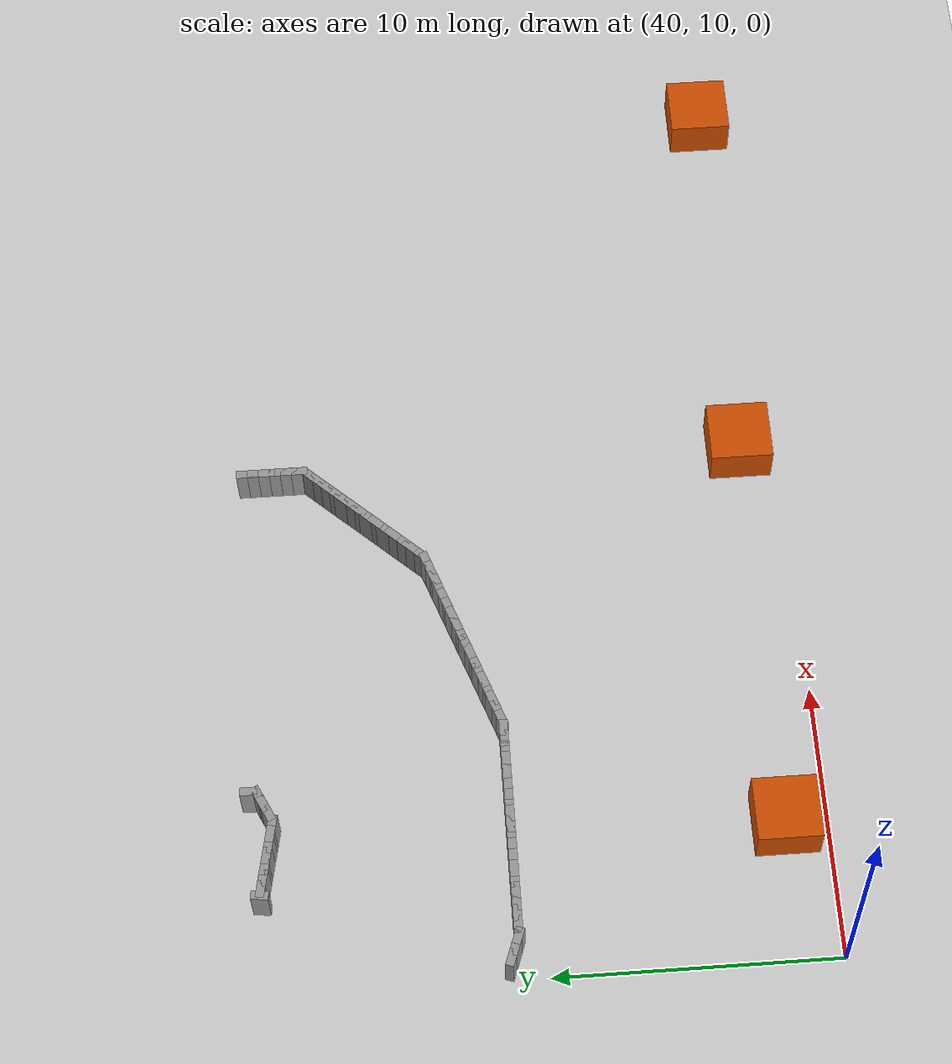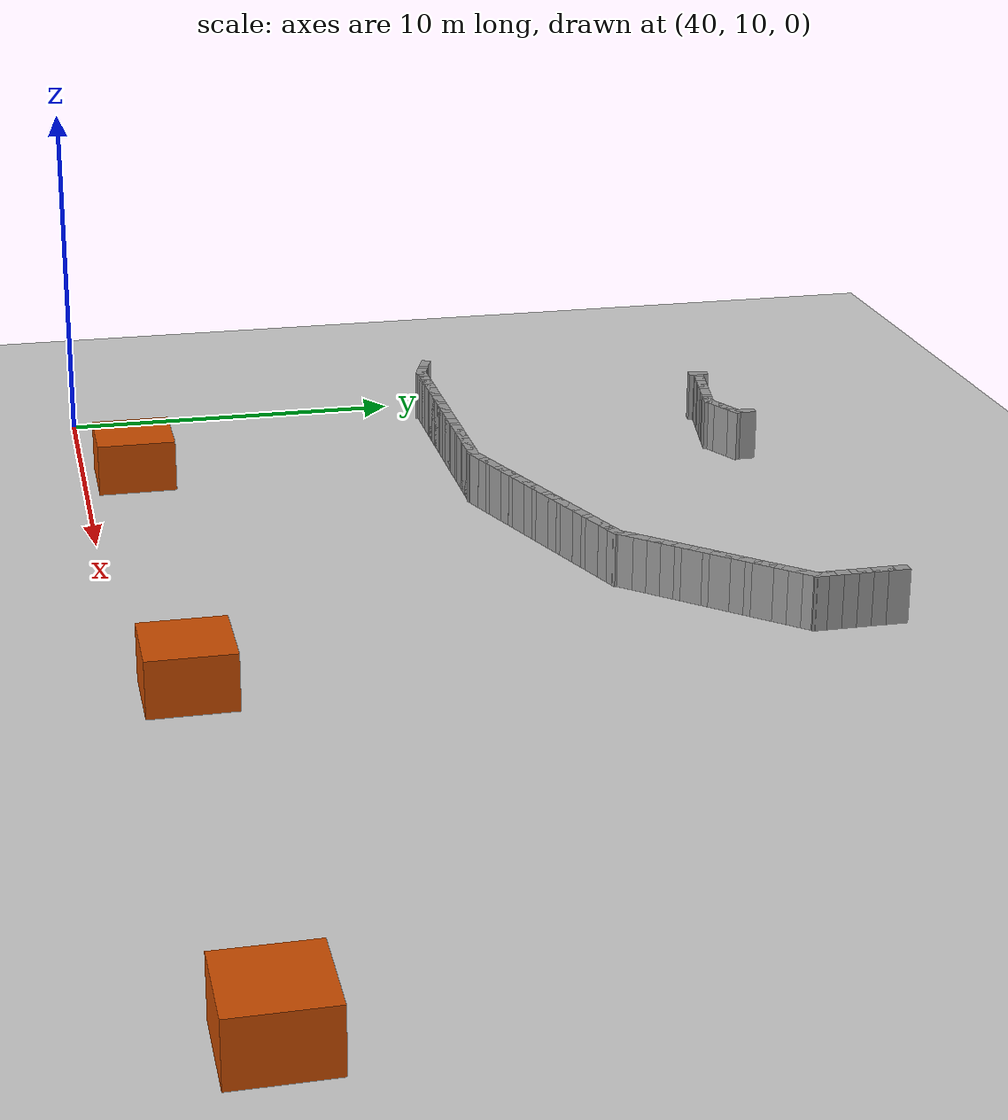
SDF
<sdf version="1.5">
 <world name="img_rect_obs">
  <include><uri>model://sun</uri></include>
  <include><uri>model://ground_plane</uri></include>
  <model name="wallL_42">
   <static>true</static>
   <pose>40.312 21.274 0.750 0 0 -0.343</pose>
   <link name="link">
    <collision name="col"><geometry><box><size>0.600 0.300 1.500</size></box></geometry></collision>
    <visual name="vis">
     <geometry><box><size>0.600 0.300 1.500</size></box></geometry>
     <material><ambient>0.6 0.6 0.6 1</ambient><diffuse>0.6 0.6 0.6 1</diffuse></material>
    </visual>
   </link>
  </model>
  <model name="wallL_43">
   <static>true</static>
   <pose>40.689 21.139 0.750 0 0 -0.343</pose>
   <link name="link">
    <collision name="col"><geometry><box><size>0.600 0.300 1.500</size></box></geometry></collision>
    <visual name="vis">
     <geometry><box><size>0.600 0.300 1.500</size></box></geometry>
     <material><ambient>0.6 0.6 0.6 1</ambient><diffuse>0.6 0.6 0.6 1</diffuse></material>
    </visual>
   </link>
  </model>
  <model name="wallL_44">
   <static>true</static>
   <pose>41.065 21.005 0.750 0 0 -0.343</pose>
   <link name="link">
    <collision name="col"><geometry><box><size>0.600 0.300 1.500</size></box></geometry></collision>
    <visual name="vis">
     <geometry><box><size>0.600 0.300 1.500</size></box></geometry>
     <material><ambient>0.6 0.6 0.6 1</ambient><diffuse>0.6 0.6 0.6 1</diffuse></material>
    </visual>
   </link>
  </model>
  <model name="wallL_45">
   <static>true</static>
   <pose>41.462 20.985 0.750 0 0 0.000</pose>
   <link name="link">
    <collision name="col"><geometry><box><size>0.600 0.300 1.500</size></box></geometry></collision>
    <visual name="vis">
     <geometry><box><size>0.600 0.300 1.500</size></box></geometry>
     <material><ambient>0.6 0.6 0.6 1</ambient><diffuse>0.6 0.6 0.6 1</diffuse></material>
    </visual>
   </link>
  </model>
  <model name="wallL_46">
   <static>true</static>
   <pose>41.862 20.985 0.750 0 0 0.000</pose>
   <link name="link">
    <collision name="col"><geometry><box><size>0.600 0.300 1.500</size></box></geometry></collision>
    <visual name="vis">
     <geometry><box><size>0.600 0.300 1.500</size></box></geometry>
     <material><ambient>0.6 0.6 0.6 1</ambient><diffuse>0.6 0.6 0.6 1</diffuse></material>
    </visual>
   </link>
  </model>
  <model name="wallL_47">
   <static>true</static>
   <pose>42.262 20.985 0.750 0 0 0.000</pose>
   <link name="link">
    <collision name="col"><geometry><box><size>0.600 0.300 1.500</size></box></geometry></collision>
    <visual name="vis">
     <geometry><box><size>0.600 0.300 1.500</size></box></geometry>
     <material><ambient>0.6 0.6 0.6 1</ambient><diffuse>0.6 0.6 0.6 1</diffuse></material>
    </visual>
   </link>
  </model>
  <model name="wallL_48">
   <static>true</static>
   <pose>42.662 20.985 0.750 0 0 0.000</pose>
   <link name="link">
    <collision name="col"><geometry><box><size>0.600 0.300 1.500</size></box></geometry></collision>
    <visual name="vis">
     <geometry><box><size>0.600 0.300 1.500</size></box></geometry>
     <material><ambient>0.6 0.6 0.6 1</ambient><diffuse>0.6 0.6 0.6 1</diffuse></material>
    </visual>
   </link>
  </model>
  <model name="wallL_49">
   <static>true</static>
   <pose>43.062 20.985 0.750 0 0 0.000</pose>
   <link name="link">
    <collision name="col"><geometry><box><size>0.600 0.300 1.500</size></box></geometry></collision>
    <visual name="vis">
     <geometry><box><size>0.600 0.300 1.500</size></box></geometry>
     <material><ambient>0.6 0.6 0.6 1</ambient><diffuse>0.6 0.6 0.6 1</diffuse></material>
    </visual>
   </link>
  </model>
  <model name="wallL_50">
   <static>true</static>
   <pose>43.462 20.985 0.750 0 0 0.000</pose>
   <link name="link">
    <collision name="col"><geometry><box><size>0.600 0.300 1.500</size></box></geometry></collision>
    <visual name="vis">
     <geometry><box><size>0.600 0.300 1.500</size></box></geometry>
     <material><ambient>0.6 0.6 0.6 1</ambient><diffuse>0.6 0.6 0.6 1</diffuse></material>
    </visual>
   </link>
  </model>
  <model name="wallL_51">
   <static>true</static>
   <pose>43.862 20.985 0.750 0 0 0.000</pose>
   <link name="link">
    <collision name="col"><geometry><box><size>0.600 0.300 1.500</size></box></geometry></collision>
    <visual name="vis">
     <geometry><box><size>0.600 0.300 1.500</size></box></geometry>
     <material><ambient>0.6 0.6 0.6 1</ambient><diffuse>0.6 0.6 0.6 1</diffuse></material>
    </visual>
   </link>
  </model>
  <model name="wallL_52">
   <static>true</static>
   <pose>44.262 20.985 0.750 0 0 0.000</pose>
   <link name="link">
    <collision name="col"><geometry><box><size>0.600 0.300 1.500</size></box></geometry></collision>
    <visual name="vis">
     <geometry><box><size>0.600 0.300 1.500</size></box></geometry>
     <material><ambient>0.6 0.6 0.6 1</ambient><diffuse>0.6 0.6 0.6 1</diffuse></material>
    </visual>
   </link>
  </model>
  <model name="wallL_53">
   <static>true</static>
   <pose>44.662 20.985 0.750 0 0 0.000</pose>
   <link name="link">
    <collision name="col"><geometry><box><size>0.600 0.300 1.500</size></box></geometry></collision>
    <visual name="vis">
     <geometry><box><size>0.600 0.300 1.500</size></box></geometry>
     <material><ambient>0.6 0.6 0.6 1</ambient><diffuse>0.6 0.6 0.6 1</diffuse></material>
    </visual>
   </link>
  </model>
  <model name="wallL_54">
   <static>true</static>
   <pose>45.062 20.985 0.750 0 0 0.000</pose>
   <link name="link">
    <collision name="col"><geometry><box><size>0.600 0.300 1.500</size></box></geometry></collision>
    <visual name="vis">
     <geometry><box><size>0.600 0.300 1.500</size></box></geometry>
     <material><ambient>0.6 0.6 0.6 1</ambient><diffuse>0.6 0.6 0.6 1</diffuse></material>
    </visual>
   </link>
  </model>
  <model name="wallL_55">
   <static>true</static>
   <pose>45.462 20.985 0.750 0 0 0.000</pose>
   <link name="link">
    <collision name="col"><geometry><box><size>0.600 0.300 1.500</size></box></geometry></collision>
    <visual name="vis">
     <geometry><box><size>0.600 0.300 1.500</size></box></geometry>
     <material><ambient>0.6 0.6 0.6 1</ambient><diffuse>0.6 0.6 0.6 1</diffuse></material>
    </visual>
   </link>
  </model>
  <model name="wallL_56">
   <static>true</static>
   <pose>45.862 20.985 0.750 0 0 0.000</pose>
   <link name="link">
    <collision name="col"><geometry><box><size>0.600 0.300 1.500</size></box></geometry></collision>
    <visual name="vis">
     <geometry><box><size>0.600 0.300 1.500</size></box></geometry>
     <material><ambient>0.6 0.6 0.6 1</ambient><diffuse>0.6 0.6 0.6 1</diffuse></material>
    </visual>
   </link>
  </model>
  <model name="wallL_57">
   <static>true</static>
   <pose>46.262 20.985 0.750 0 0 0.000</pose>
   <link name="link">
    <collision name="col"><geometry><box><size>0.600 0.300 1.500</size></box></geometry></collision>
    <visual name="vis">
     <geometry><box><size>0.600 0.300 1.500</size></box></geometry>
     <material><ambient>0.6 0.6 0.6 1</ambient><diffuse>0.6 0.6 0.6 1</diffuse></material>
    </visual>
   </link>
  </model>
  <model name="wallL_58">
   <static>true</static>
   <pose>46.662 20.985 0.750 0 0 0.000</pose>
   <link name="link">
    <collision name="col"><geometry><box><size>0.600 0.300 1.500</size></box></geometry></collision>
    <visual name="vis">
     <geometry><box><size>0.600 0.300 1.500</size></box></geometry>
     <material><ambient>0.6 0.6 0.6 1</ambient><diffuse>0.6 0.6 0.6 1</diffuse></material>
    </visual>
   </link>
  </model>
  <model name="wallL_59">
   <static>true</static>
   <pose>47.062 20.985 0.750 0 0 0.000</pose>
   <link name="link">
    <collision name="col"><geometry><box><size>0.600 0.300 1.500</size></box></geometry></collision>
    <visual name="vis">
     <geometry><box><size>0.600 0.300 1.500</size></box></geometry>
     <material><ambient>0.6 0.6 0.6 1</ambient><diffuse>0.6 0.6 0.6 1</diffuse></material>
    </visual>
   </link>
  </model>
  <model name="wallL_60">
   <static>true</static>
   <pose>47.462 20.985 0.750 0 0 0.000</pose>
   <link name="link">
    <collision name="col"><geometry><box><size>0.600 0.300 1.500</size></box></geometry></collision>
    <visual name="vis">
     <geometry><box><size>0.600 0.300 1.500</size></box></geometry>
     <material><ambient>0.6 0.6 0.6 1</ambient><diffuse>0.6 0.6 0.6 1</diffuse></material>
    </visual>
   </link>
  </model>
  <model name="wallL_61">
   <static>true</static>
   <pose>47.862 20.985 0.750 0 0 0.000</pose>
   <link name="link">
    <collision name="col"><geometry><box><size>0.600 0.300 1.500</size></box></geometry></collision>
    <visual name="vis">
     <geometry><box><size>0.600 0.300 1.500</size></box></geometry>
     <material><ambient>0.6 0.6 0.6 1</ambient><diffuse>0.6 0.6 0.6 1</diffuse></material>
    </visual>
   </link>
  </model>
  <model name="wallL_62">
   <static>true</static>
   <pose>48.262 20.985 0.750 0 0 0.000</pose>
   <link name="link">
    <collision name="col"><geometry><box><size>0.600 0.300 1.500</size></box></geometry></collision>
    <visual name="vis">
     <geometry><box><size>0.600 0.300 1.500</size></box></geometry>
     <material><ambient>0.6 0.6 0.6 1</ambient><diffuse>0.6 0.6 0.6 1</diffuse></material>
    </visual>
   </link>
  </model>
  <model name="wallL_63">
   <static>true</static>
   <pose>48.662 20.985 0.750 0 0 0.000</pose>
   <link name="link">
    <collision name="col"><geometry><box><size>0.600 0.300 1.500</size></box></geometry></collision>
    <visual name="vis">
     <geometry><box><size>0.600 0.300 1.500</size></box></geometry>
     <material><ambient>0.6 0.6 0.6 1</ambient><diffuse>0.6 0.6 0.6 1</diffuse></material>
    </visual>
   </link>
  </model>
  <model name="wallL_64">
   <static>true</static>
   <pose>49.051 21.046 0.750 0 0 0.343</pose>
   <link name="link">
    <collision name="col"><geometry><box><size>0.600 0.300 1.500</size></box></geometry></collision>
    <visual name="vis">
     <geometry><box><size>0.600 0.300 1.500</size></box></geometry>
     <material><ambient>0.6 0.6 0.6 1</ambient><diffuse>0.6 0.6 0.6 1</diffuse></material>
    </visual>
   </link>
  </model>
  <model name="wallL_65">
   <static>true</static>
   <pose>49.428 21.181 0.750 0 0 0.343</pose>
   <link name="link">
    <collision name="col"><geometry><box><size>0.600 0.300 1.500</size></box></geometry></collision>
    <visual name="vis">
     <geometry><box><size>0.600 0.300 1.500</size></box></geometry>
     <material><ambient>0.6 0.6 0.6 1</ambient><diffuse>0.6 0.6 0.6 1</diffuse></material>
    </visual>
   </link>
  </model>
  <model name="wallL_66">
   <static>true</static>
   <pose>49.804 21.316 0.750 0 0 0.343</pose>
   <link name="link">
    <collision name="col"><geometry><box><size>0.600 0.300 1.500</size></box></geometry></collision>
    <visual name="vis">
     <geometry><box><size>0.600 0.300 1.500</size></box></geometry>
     <material><ambient>0.6 0.6 0.6 1</ambient><diffuse>0.6 0.6 0.6 1</diffuse></material>
    </visual>
   </link>
  </model>
  <model name="wallL_67">
   <static>true</static>
   <pose>50.181 21.450 0.750 0 0 0.343</pose>
   <link name="link">
    <collision name="col"><geometry><box><size>0.600 0.300 1.500</size></box></geometry></collision>
    <visual name="vis">
     <geometry><box><size>0.600 0.300 1.500</size></box></geometry>
     <material><ambient>0.6 0.6 0.6 1</ambient><diffuse>0.6 0.6 0.6 1</diffuse></material>
    </visual>
   </link>
  </model>
  <model name="wallL_68">
   <static>true</static>
   <pose>50.558 21.585 0.750 0 0 0.343</pose>
   <link name="link">
    <collision name="col"><geometry><box><size>0.600 0.300 1.500</size></box></geometry></collision>
    <visual name="vis">
     <geometry><box><size>0.600 0.300 1.500</size></box></geometry>
     <material><ambient>0.6 0.6 0.6 1</ambient><diffuse>0.6 0.6 0.6 1</diffuse></material>
    </visual>
   </link>
  </model>
  <model name="wallL_69">
   <static>true</static>
   <pose>50.934 21.720 0.750 0 0 0.343</pose>
   <link name="link">
    <collision name="col"><geometry><box><size>0.600 0.300 1.500</size></box></geometry></collision>
    <visual name="vis">
     <geometry><box><size>0.600 0.300 1.500</size></box></geometry>
     <material><ambient>0.6 0.6 0.6 1</ambient><diffuse>0.6 0.6 0.6 1</diffuse></material>
    </visual>
   </link>
  </model>
  <model name="wallL_70">
   <static>true</static>
   <pose>51.311 21.854 0.750 0 0 0.343</pose>
   <link name="link">
    <collision name="col"><geometry><box><size>0.600 0.300 1.500</size></box></geometry></collision>
    <visual name="vis">
     <geometry><box><size>0.600 0.300 1.500</size></box></geometry>
     <material><ambient>0.6 0.6 0.6 1</ambient><diffuse>0.6 0.6 0.6 1</diffuse></material>
    </visual>
   </link>
  </model>
  <model name="wallL_71">
   <static>true</static>
   <pose>51.688 21.989 0.750 0 0 0.343</pose>
   <link name="link">
    <collision name="col"><geometry><box><size>0.600 0.300 1.500</size></box></geometry></collision>
    <visual name="vis">
     <geometry><box><size>0.600 0.300 1.500</size></box></geometry>
     <material><ambient>0.6 0.6 0.6 1</ambient><diffuse>0.6 0.6 0.6 1</diffuse></material>
    </visual>
   </link>
  </model>
  <model name="wallL_72">
   <static>true</static>
   <pose>52.064 22.124 0.750 0 0 0.343</pose>
   <link name="link">
    <collision name="col"><geometry><box><size>0.600 0.300 1.500</size></box></geometry></collision>
    <visual name="vis">
     <geometry><box><size>0.600 0.300 1.500</size></box></geometry>
     <material><ambient>0.6 0.6 0.6 1</ambient><diffuse>0.6 0.6 0.6 1</diffuse></material>
    </visual>
   </link>
  </model>
  <model name="wallL_73">
   <static>true</static>
   <pose>52.441 22.258 0.750 0 0 0.343</pose>
   <link name="link">
    <collision name="col"><geometry><box><size>0.600 0.300 1.500</size></box></geometry></collision>
    <visual name="vis">
     <geometry><box><size>0.600 0.300 1.500</size></box></geometry>
     <material><ambient>0.6 0.6 0.6 1</ambient><diffuse>0.6 0.6 0.6 1</diffuse></material>
    </visual>
   </link>
  </model>
  <model name="wallL_74">
   <static>true</static>
   <pose>52.818 22.393 0.750 0 0 0.343</pose>
   <link name="link">
    <collision name="col"><geometry><box><size>0.600 0.300 1.500</size></box></geometry></collision>
    <visual name="vis">
     <geometry><box><size>0.600 0.300 1.500</size></box></geometry>
     <material><ambient>0.6 0.6 0.6 1</ambient><diffuse>0.6 0.6 0.6 1</diffuse></material>
    </visual>
   </link>
  </model>
  <model name="wallL_75">
   <static>true</static>
   <pose>53.194 22.528 0.750 0 0 0.343</pose>
   <link name="link">
    <collision name="col"><geometry><box><size>0.600 0.300 1.500</size></box></geometry></collision>
    <visual name="vis">
     <geometry><box><size>0.600 0.300 1.500</size></box></geometry>
     <material><ambient>0.6 0.6 0.6 1</ambient><diffuse>0.6 0.6 0.6 1</diffuse></material>
    </visual>
   </link>
  </model>
  <model name="wallL_76">
   <static>true</static>
   <pose>53.571 22.662 0.750 0 0 0.343</pose>
   <link name="link">
    <collision name="col"><geometry><box><size>0.600 0.300 1.500</size></box></geometry></collision>
    <visual name="vis">
     <geometry><box><size>0.600 0.300 1.500</size></box></geometry>
     <material><ambient>0.6 0.6 0.6 1</ambient><diffuse>0.6 0.6 0.6 1</diffuse></material>
    </visual>
   </link>
  </model>
  <model name="wallL_77">
   <static>true</static>
   <pose>53.947 22.797 0.750 0 0 0.343</pose>
   <link name="link">
    <collision name="col"><geometry><box><size>0.600 0.300 1.500</size></box></geometry></collision>
    <visual name="vis">
     <geometry><box><size>0.600 0.300 1.500</size></box></geometry>
     <material><ambient>0.6 0.6 0.6 1</ambient><diffuse>0.6 0.6 0.6 1</diffuse></material>
    </visual>
   </link>
  </model>
  <model name="wallL_78">
   <static>true</static>
   <pose>54.324 22.932 0.750 0 0 0.343</pose>
   <link name="link">
    <collision name="col"><geometry><box><size>0.600 0.300 1.500</size></box></geometry></collision>
    <visual name="vis">
     <geometry><box><size>0.600 0.300 1.500</size></box></geometry>
     <material><ambient>0.6 0.6 0.6 1</ambient><diffuse>0.6 0.6 0.6 1</diffuse></material>
    </visual>
   </link>
  </model>
  <model name="wallL_79">
   <static>true</static>
   <pose>54.701 23.066 0.750 0 0 0.343</pose>
   <link name="link">
    <collision name="col"><geometry><box><size>0.600 0.300 1.500</size></box></geometry></collision>
    <visual name="vis">
     <geometry><box><size>0.600 0.300 1.500</size></box></geometry>
     <material><ambient>0.6 0.6 0.6 1</ambient><diffuse>0.6 0.6 0.6 1</diffuse></material>
    </visual>
   </link>
  </model>
  <model name="wallL_80">
   <static>true</static>
   <pose>55.077 23.201 0.750 0 0 0.343</pose>
   <link name="link">
    <collision name="col"><geometry><box><size>0.600 0.300 1.500</size></box></geometry></collision>
    <visual name="vis">
     <geometry><box><size>0.600 0.300 1.500</size></box></geometry>
     <material><ambient>0.6 0.6 0.6 1</ambient><diffuse>0.6 0.6 0.6 1</diffuse></material>
    </visual>
   </link>
  </model>
  <model name="wallL_81">
   <static>true</static>
   <pose>55.454 23.336 0.750 0 0 0.343</pose>
   <link name="link">
    <collision name="col"><geometry><box><size>0.600 0.300 1.500</size></box></geometry></collision>
    <visual name="vis">
     <geometry><box><size>0.600 0.300 1.500</size></box></geometry>
     <material><ambient>0.6 0.6 0.6 1</ambient><diffuse>0.6 0.6 0.6 1</diffuse></material>
    </visual>
   </link>
  </model>
  <model name="wallL_82">
   <static>true</static>
   <pose>55.763 23.573 0.750 0 0 0.829</pose>
   <link name="link">
    <collision name="col"><geometry><box><size>0.600 0.300 1.500</size></box></geometry></collision>
    <visual name="vis">
     <geometry><box><size>0.600 0.300 1.500</size></box></geometry>
     <material><ambient>0.6 0.6 0.6 1</ambient><diffuse>0.6 0.6 0.6 1</diffuse></material>
    </visual>
   </link>
  </model>
  <model name="wallL_83">
   <static>true</static>
   <pose>56.033 23.868 0.750 0 0 0.829</pose>
   <link name="link">
    <collision name="col"><geometry><box><size>0.600 0.300 1.500</size></box></geometry></collision>
    <visual name="vis">
     <geometry><box><size>0.600 0.300 1.500</size></box></geometry>
     <material><ambient>0.6 0.6 0.6 1</ambient><diffuse>0.6 0.6 0.6 1</diffuse></material>
    </visual>
   </link>
  </model>
  <model name="wallL_84">
   <static>true</static>
   <pose>56.303 24.163 0.750 0 0 0.829</pose>
   <link name="link">
    <collision name="col"><geometry><box><size>0.600 0.300 1.500</size></box></geometry></collision>
    <visual name="vis">
     <geometry><box><size>0.600 0.300 1.500</size></box></geometry>
     <material><ambient>0.6 0.6 0.6 1</ambient><diffuse>0.6 0.6 0.6 1</diffuse></material>
    </visual>
   </link>
  </model>
  <model name="wallL_85">
   <static>true</static>
   <pose>56.573 24.458 0.750 0 0 0.829</pose>
   <link name="link">
    <collision name="col"><geometry><box><size>0.600 0.300 1.500</size></box></geometry></collision>
    <visual name="vis">
     <geometry><box><size>0.600 0.300 1.500</size></box></geometry>
     <material><ambient>0.6 0.6 0.6 1</ambient><diffuse>0.6 0.6 0.6 1</diffuse></material>
    </visual>
   </link>
  </model>
  <model name="wallL_86">
   <static>true</static>
   <pose>56.843 24.753 0.750 0 0 0.829</pose>
   <link name="link">
    <collision name="col"><geometry><box><size>0.600 0.300 1.500</size></box></geometry></collision>
    <visual name="vis">
     <geometry><box><size>0.600 0.300 1.500</size></box></geometry>
     <material><ambient>0.6 0.6 0.6 1</ambient><diffuse>0.6 0.6 0.6 1</diffuse></material>
    </visual>
   </link>
  </model>
  <model name="wallL_87">
   <static>true</static>
   <pose>57.114 25.048 0.750 0 0 0.829</pose>
   <link name="link">
    <collision name="col"><geometry><box><size>0.600 0.300 1.500</size></box></geometry></collision>
    <visual name="vis">
     <geometry><box><size>0.600 0.300 1.500</size></box></geometry>
     <material><ambient>0.6 0.6 0.6 1</ambient><diffuse>0.6 0.6 0.6 1</diffuse></material>
    </visual>
   </link>
  </model>
  <model name="wallL_88">
   <static>true</static>
   <pose>57.384 25.343 0.750 0 0 0.829</pose>
   <link name="link">
    <collision name="col"><geometry><box><size>0.600 0.300 1.500</size></box></geometry></collision>
    <visual name="vis">
     <geometry><box><size>0.600 0.300 1.500</size></box></geometry>
     <material><ambient>0.6 0.6 0.6 1</ambient><diffuse>0.6 0.6 0.6 1</diffuse></material>
    </visual>
   </link>
  </model>
  <model name="wallL_89">
   <static>true</static>
   <pose>57.654 25.637 0.750 0 0 0.829</pose>
   <link name="link">
    <collision name="col"><geometry><box><size>0.600 0.300 1.500</size></box></geometry></collision>
    <visual name="vis">
     <geometry><box><size>0.600 0.300 1.500</size></box></geometry>
     <material><ambient>0.6 0.6 0.6 1</ambient><diffuse>0.6 0.6 0.6 1</diffuse></material>
    </visual>
   </link>
  </model>
  <model name="wallL_90">
   <static>true</static>
   <pose>57.924 25.932 0.750 0 0 0.829</pose>
   <link name="link">
    <collision name="col"><geometry><box><size>0.600 0.300 1.500</size></box></geometry></collision>
    <visual name="vis">
     <geometry><box><size>0.600 0.300 1.500</size></box></geometry>
     <material><ambient>0.6 0.6 0.6 1</ambient><diffuse>0.6 0.6 0.6 1</diffuse></material>
    </visual>
   </link>
  </model>
  <model name="wallL_91">
   <static>true</static>
   <pose>58.194 26.227 0.750 0 0 0.829</pose>
   <link name="link">
    <collision name="col"><geometry><box><size>0.600 0.300 1.500</size></box></geometry></collision>
    <visual name="vis">
     <geometry><box><size>0.600 0.300 1.500</size></box></geometry>
     <material><ambient>0.6 0.6 0.6 1</ambient><diffuse>0.6 0.6 0.6 1</diffuse></material>
    </visual>
   </link>
  </model>
  <model name="wallL_92">
   <static>true</static>
   <pose>58.465 26.522 0.750 0 0 0.829</pose>
   <link name="link">
    <collision name="col"><geometry><box><size>0.600 0.300 1.500</size></box></geometry></collision>
    <visual name="vis">
     <geometry><box><size>0.600 0.300 1.500</size></box></geometry>
     <material><ambient>0.6 0.6 0.6 1</ambient><diffuse>0.6 0.6 0.6 1</diffuse></material>
    </visual>
   </link>
  </model>
  <model name="wallL_93">
   <static>true</static>
   <pose>58.735 26.817 0.750 0 0 0.829</pose>
   <link name="link">
    <collision name="col"><geometry><box><size>0.600 0.300 1.500</size></box></geometry></collision>
    <visual name="vis">
     <geometry><box><size>0.600 0.300 1.500</size></box></geometry>
     <material><ambient>0.6 0.6 0.6 1</ambient><diffuse>0.6 0.6 0.6 1</diffuse></material>
    </visual>
   </link>
  </model>
  <model name="wallL_94">
   <static>true</static>
   <pose>59.005 27.112 0.750 0 0 0.829</pose>
   <link name="link">
    <collision name="col"><geometry><box><size>0.600 0.300 1.500</size></box></geometry></collision>
    <visual name="vis">
     <geometry><box><size>0.600 0.300 1.500</size></box></geometry>
     <material><ambient>0.6 0.6 0.6 1</ambient><diffuse>0.6 0.6 0.6 1</diffuse></material>
    </visual>
   </link>
  </model>
  <model name="wallL_95">
   <static>true</static>
   <pose>59.275 27.407 0.750 0 0 0.829</pose>
   <link name="link">
    <collision name="col"><geometry><box><size>0.600 0.300 1.500</size></box></geometry></collision>
    <visual name="vis">
     <geometry><box><size>0.600 0.300 1.500</size></box></geometry>
     <material><ambient>0.6 0.6 0.6 1</ambient><diffuse>0.6 0.6 0.6 1</diffuse></material>
    </visual>
   </link>
  </model>
  <model name="wallL_96">
   <static>true</static>
   <pose>59.431 27.747 0.750 0 0 1.571</pose>
   <link name="link">
    <collision name="col"><geometry><box><size>0.600 0.300 1.500</size></box></geometry></collision>
    <visual name="vis">
     <geometry><box><size>0.600 0.300 1.500</size></box></geometry>
     <material><ambient>0.6 0.6 0.6 1</ambient><diffuse>0.6 0.6 0.6 1</diffuse></material>
    </visual>
   </link>
  </model>
  <model name="wallL_97">
   <static>true</static>
   <pose>59.431 28.147 0.750 0 0 1.571</pose>
   <link name="link">
    <collision name="col"><geometry><box><size>0.600 0.300 1.500</size></box></geometry></collision>
    <visual name="vis">
     <geometry><box><size>0.600 0.300 1.500</size></box></geometry>
     <material><ambient>0.6 0.6 0.6 1</ambient><diffuse>0.6 0.6 0.6 1</diffuse></material>
    </visual>
   </link>
  </model>
  <model name="wallL_98">
   <static>true</static>
   <pose>59.431 28.547 0.750 0 0 1.571</pose>
   <link name="link">
    <collision name="col"><geometry><box><size>0.600 0.300 1.500</size></box></geometry></collision>
    <visual name="vis">
     <geometry><box><size>0.600 0.300 1.500</size></box></geometry>
     <material><ambient>0.6 0.6 0.6 1</ambient><diffuse>0.6 0.6 0.6 1</diffuse></material>
    </visual>
   </link>
  </model>
  <model name="wallL_99">
   <static>true</static>
   <pose>59.431 28.947 0.750 0 0 1.571</pose>
   <link name="link">
    <collision name="col"><geometry><box><size>0.600 0.300 1.500</size></box></geometry></collision>
    <visual name="vis">
     <geometry><box><size>0.600 0.300 1.500</size></box></geometry>
     <material><ambient>0.6 0.6 0.6 1</ambient><diffuse>0.6 0.6 0.6 1</diffuse></material>
    </visual>
   </link>
  </model>
  <model name="wallL_100">
   <static>true</static>
   <pose>59.431 29.347 0.750 0 0 1.571</pose>
   <link name="link">
    <collision name="col"><geometry><box><size>0.600 0.300 1.500</size></box></geometry></collision>
    <visual name="vis">
     <geometry><box><size>0.600 0.300 1.500</size></box></geometry>
     <material><ambient>0.6 0.6 0.6 1</ambient><diffuse>0.6 0.6 0.6 1</diffuse></material>
    </visual>
   </link>
  </model>
  <model name="wallL_101">
   <static>true</static>
   <pose>59.431 29.747 0.750 0 0 1.571</pose>
   <link name="link">
    <collision name="col"><geometry><box><size>0.600 0.300 1.500</size></box></geometry></collision>
    <visual name="vis">
     <geometry><box><size>0.600 0.300 1.500</size></box></geometry>
     <material><ambient>0.6 0.6 0.6 1</ambient><diffuse>0.6 0.6 0.6 1</diffuse></material>
    </visual>
   </link>
  </model>
  <model name="wallR_0">
   <static>true</static>
   <pose>43.101 29.587 0.750 0 0 1.459</pose>
   <link name="link">
    <collision name="col"><geometry><box><size>0.600 0.300 1.500</size></box></geometry></collision>
    <visual name="vis">
     <geometry><box><size>0.600 0.300 1.500</size></box></geometry>
     <material><ambient>0.6 0.6 0.6 1</ambient><diffuse>0.6 0.6 0.6 1</diffuse></material>
    </visual>
   </link>
  </model>
  <model name="wallR_13">
   <static>true</static>
   <pose>46.899 29.885 0.750 0 0 -1.571</pose>
   <link name="link">
    <collision name="col"><geometry><box><size>0.600 0.300 1.500</size></box></geometry></collision>
    <visual name="vis">
     <geometry><box><size>0.600 0.300 1.500</size></box></geometry>
     <material><ambient>0.6 0.6 0.6 1</ambient><diffuse>0.6 0.6 0.6 1</diffuse></material>
    </visual>
   </link>
  </model>
  <model name="wallR_14">
   <static>true</static>
   <pose>46.775 29.563 0.750 0 0 -2.693</pose>
   <link name="link">
    <collision name="col"><geometry><box><size>0.600 0.300 1.500</size></box></geometry></collision>
    <visual name="vis">
     <geometry><box><size>0.600 0.300 1.500</size></box></geometry>
     <material><ambient>0.6 0.6 0.6 1</ambient><diffuse>0.6 0.6 0.6 1</diffuse></material>
    </visual>
   </link>
  </model>
  <model name="wallR_15">
   <static>true</static>
   <pose>46.415 29.389 0.750 0 0 -2.693</pose>
   <link name="link">
    <collision name="col"><geometry><box><size>0.600 0.300 1.500</size></box></geometry></collision>
    <visual name="vis">
     <geometry><box><size>0.600 0.300 1.500</size></box></geometry>
     <material><ambient>0.6 0.6 0.6 1</ambient><diffuse>0.6 0.6 0.6 1</diffuse></material>
    </visual>
   </link>
  </model>
  <model name="wallR_16">
   <static>true</static>
   <pose>46.054 29.216 0.750 0 0 -2.693</pose>
   <link name="link">
    <collision name="col"><geometry><box><size>0.600 0.300 1.500</size></box></geometry></collision>
    <visual name="vis">
     <geometry><box><size>0.600 0.300 1.500</size></box></geometry>
     <material><ambient>0.6 0.6 0.6 1</ambient><diffuse>0.6 0.6 0.6 1</diffuse></material>
    </visual>
   </link>
  </model>
  <model name="wallR_17">
   <static>true</static>
   <pose>45.686 29.104 0.750 0 0 2.957</pose>
   <link name="link">
    <collision name="col"><geometry><box><size>0.600 0.300 1.500</size></box></geometry></collision>
    <visual name="vis">
     <geometry><box><size>0.600 0.300 1.500</size></box></geometry>
     <material><ambient>0.6 0.6 0.6 1</ambient><diffuse>0.6 0.6 0.6 1</diffuse></material>
    </visual>
   </link>
  </model>
  <model name="wallR_18">
   <static>true</static>
   <pose>45.292 29.178 0.750 0 0 2.957</pose>
   <link name="link">
    <collision name="col"><geometry><box><size>0.600 0.300 1.500</size></box></geometry></collision>
    <visual name="vis">
     <geometry><box><size>0.600 0.300 1.500</size></box></geometry>
     <material><ambient>0.6 0.6 0.6 1</ambient><diffuse>0.6 0.6 0.6 1</diffuse></material>
    </visual>
   </link>
  </model>
  <model name="wallR_19">
   <static>true</static>
   <pose>44.899 29.251 0.750 0 0 2.957</pose>
   <link name="link">
    <collision name="col"><geometry><box><size>0.600 0.300 1.500</size></box></geometry></collision>
    <visual name="vis">
     <geometry><box><size>0.600 0.300 1.500</size></box></geometry>
     <material><ambient>0.6 0.6 0.6 1</ambient><diffuse>0.6 0.6 0.6 1</diffuse></material>
    </visual>
   </link>
  </model>
  <model name="wallR_20">
   <static>true</static>
   <pose>44.506 29.324 0.750 0 0 2.957</pose>
   <link name="link">
    <collision name="col"><geometry><box><size>0.600 0.300 1.500</size></box></geometry></collision>
    <visual name="vis">
     <geometry><box><size>0.600 0.300 1.500</size></box></geometry>
     <material><ambient>0.6 0.6 0.6 1</ambient><diffuse>0.6 0.6 0.6 1</diffuse></material>
    </visual>
   </link>
  </model>
  <model name="wallR_21">
   <static>true</static>
   <pose>44.113 29.398 0.750 0 0 2.957</pose>
   <link name="link">
    <collision name="col"><geometry><box><size>0.600 0.300 1.500</size></box></geometry></collision>
    <visual name="vis">
     <geometry><box><size>0.600 0.300 1.500</size></box></geometry>
     <material><ambient>0.6 0.6 0.6 1</ambient><diffuse>0.6 0.6 0.6 1</diffuse></material>
    </visual>
   </link>
  </model>
  <model name="wallR_22">
   <static>true</static>
   <pose>43.720 29.471 0.750 0 0 2.957</pose>
   <link name="link">
    <collision name="col"><geometry><box><size>0.600 0.300 1.500</size></box></geometry></collision>
    <visual name="vis">
     <geometry><box><size>0.600 0.300 1.500</size></box></geometry>
     <material><ambient>0.6 0.6 0.6 1</ambient><diffuse>0.6 0.6 0.6 1</diffuse></material>
    </visual>
   </link>
  </model>
  <model name="wallR_23">
   <static>true</static>
   <pose>43.326 29.545 0.750 0 0 2.957</pose>
   <link name="link">
    <collision name="col"><geometry><box><size>0.600 0.300 1.500</size></box></geometry></collision>
    <visual name="vis">
     <geometry><box><size>0.600 0.300 1.500</size></box></geometry>
     <material><ambient>0.6 0.6 0.6 1</ambient><diffuse>0.6 0.6 0.6 1</diffuse></material>
    </visual>
   </link>
  </model>
  <model name="obs_0">
   <static>true</static>
   <pose>75.000 11.500 0.750 0 0 0.000</pose>
   <link name="link">
    <collision name="col"><geometry><box><size>2.263 2.263 1.500</size></box></geometry></collision>
    <visual name="vis">
     <geometry><box><size>2.263 2.263 1.500</size></box></geometry>
     <material><ambient>0.8 0.3 0.0 1</ambient><diffuse>0.8 0.3 0.0 1</diffuse></material>
    </visual>
   </link>
  </model>
  <model name="obs_1">
   <static>true</static>
   <pose>60.000 11.500 0.750 0 0 0.000</pose>
   <link name="link">
    <collision name="col"><geometry><box><size>2.263 2.263 1.500</size></box></geometry></collision>
    <visual name="vis">
     <geometry><box><size>2.263 2.263 1.500</size></box></geometry>
     <material><ambient>0.8 0.3 0.0 1</ambient><diffuse>0.8 0.3 0.0 1</diffuse></material>
    </visual>
   </link>
  </model>
  <model name="obs_2">
   <static>true</static>
   <pose>45.000 11.500 0.750 0 0 0.000</pose>
   <link name="link">
    <collision name="col"><geometry><box><size>2.263 2.263 1.500</size></box></geometry></collision>
    <visual name="vis">
     <geometry><box><size>2.263 2.263 1.500</size></box></geometry>
     <material><ambient>0.8 0.3 0.0 1</ambient><diffuse>0.8 0.3 0.0 1</diffuse></material>
    </visual>
   </link>
  </model>
 </world>
</sdf>
